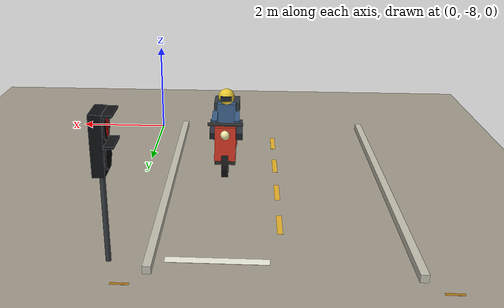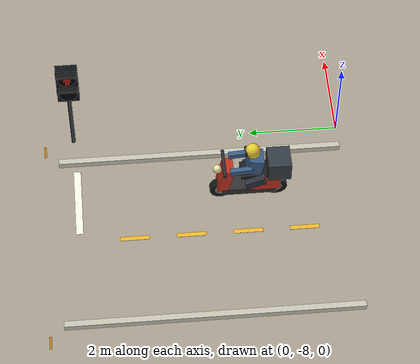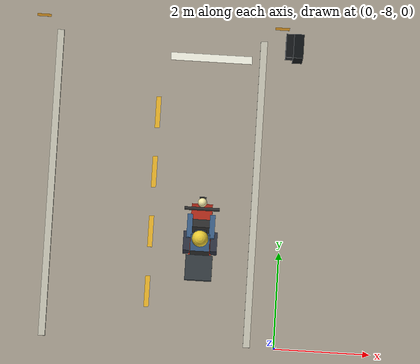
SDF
<sdf version="1.10">
 <world name="swan_market">
  <model name="ground">
   <static>true</static>
   <pose>15 0 -0.1 0 0 0</pose>
   <link name="body">
    <collision name="box_collision"><geometry><box><size>46 24 0.2</size></box></geometry></collision>
    <visual name="box_visual">
     <geometry><box><size>46 24 0.2</size></box></geometry>
     <material><ambient>0.64 0.61 0.55 1</ambient><diffuse>0.64 0.61 0.55 1</diffuse></material>
    </visual>
   </link>
  </model>
  <model name="entrance_curb_-4.83_-1">
   <static>true</static>
   <pose>-4.83 -4.8 0.07 0 0 0</pose>
   <link name="body">
    <collision name="box_collision"><geometry><box><size>0.14 6.4 0.14</size></box></geometry></collision>
    <visual name="box_visual">
     <geometry><box><size>0.14 6.4 0.14</size></box></geometry>
     <material><ambient>0.77 0.76 0.7 1</ambient><diffuse>0.77 0.76 0.7 1</diffuse></material>
    </visual>
   </link>
  </model>
  <model name="entrance_curb_-0.57_-1">
   <static>true</static>
   <pose>-0.57 -4.8 0.07 0 0 0</pose>
   <link name="body">
    <collision name="box_collision"><geometry><box><size>0.14 6.4 0.14</size></box></geometry></collision>
    <visual name="box_visual">
     <geometry><box><size>0.14 6.4 0.14</size></box></geometry>
     <material><ambient>0.77 0.76 0.7 1</ambient><diffuse>0.77 0.76 0.7 1</diffuse></material>
    </visual>
   </link>
  </model>
  <model name="road_stop_line_-1">
   <static>true</static>
   <pose>-1.65 -2 0.016 0 0 0</pose>
   <link name="body">
    <visual name="box_visual">
     <geometry><box><size>1.7 0.16 0.003</size></box></geometry>
     <material><ambient>0.95 0.95 0.89 1</ambient><diffuse>0.95 0.95 0.89 1</diffuse></material>
    </visual>
   </link>
  </model>
  <model name="road_center_line_-1_0">
   <static>true</static>
   <pose>-2.7 -3.2 0.016 0 0 0</pose>
   <link name="body">
    <visual name="box_visual">
     <geometry><box><size>0.1 0.65 0.003</size></box></geometry>
     <material><ambient>0.91 0.7 0.16 1</ambient><diffuse>0.91 0.7 0.16 1</diffuse></material>
    </visual>
   </link>
  </model>
  <model name="road_center_line_-1_1">
   <static>true</static>
   <pose>-2.7 -4.45 0.016 0 0 0</pose>
   <link name="body">
    <visual name="box_visual">
     <geometry><box><size>0.1 0.65 0.003</size></box></geometry>
     <material><ambient>0.91 0.7 0.16 1</ambient><diffuse>0.91 0.7 0.16 1</diffuse></material>
    </visual>
   </link>
  </model>
  <model name="road_center_line_-1_2">
   <static>true</static>
   <pose>-2.7 -5.7 0.016 0 0 0</pose>
   <link name="body">
    <visual name="box_visual">
     <geometry><box><size>0.1 0.65 0.003</size></box></geometry>
     <material><ambient>0.91 0.7 0.16 1</ambient><diffuse>0.91 0.7 0.16 1</diffuse></material>
    </visual>
   </link>
  </model>
  <model name="road_center_line_-1_3">
   <static>true</static>
   <pose>-2.7 -6.95 0.016 0 0 0</pose>
   <link name="body">
    <visual name="box_visual">
     <geometry><box><size>0.1 0.65 0.003</size></box></geometry>
     <material><ambient>0.91 0.7 0.16 1</ambient><diffuse>0.91 0.7 0.16 1</diffuse></material>
    </visual>
   </link>
  </model>
  <model name="tactile_mark_0_0">
   <static>true</static>
   <pose>-5.2 -1.3 0.022 0 0 0</pose>
   <link name="body">
    <visual name="box_visual">
     <geometry><box><size>0.3 0.055 0.002</size></box></geometry>
     <material><ambient>0.69 0.47 0.1 1</ambient><diffuse>0.69 0.47 0.1 1</diffuse></material>
    </visual>
   </link>
  </model>
  <model name="tactile_mark_1_0">
   <static>true</static>
   <pose>-0.2 -1.3 0.022 0 0 0</pose>
   <link name="body">
    <visual name="box_visual">
     <geometry><box><size>0.3 0.055 0.002</size></box></geometry>
     <material><ambient>0.69 0.47 0.1 1</ambient><diffuse>0.69 0.47 0.1 1</diffuse></material>
    </visual>
   </link>
  </model>
  <model name="ped_signal_east_housing">
   <static>true</static>
   <pose>0.1 -1.95 0 0 0 -1.5708</pose>
   <link name="body">
    <collision name="pole_collision">
     <pose>0 0 1.025 0 0 0</pose>
     <geometry><cylinder><radius>0.045</radius><length>2.05</length></cylinder></geometry>
    </collision>
    <visual name="pole_visual">
     <pose>0 0 1.025 0 0 0</pose>
     <geometry><cylinder><radius>0.045</radius><length>2.05</length></cylinder></geometry>
     <material><ambient>0.23 0.25 0.27 1</ambient><diffuse>0.23 0.25 0.27 1</diffuse></material>
    </visual>
    <collision name="housing_collision">
     <pose>0 0 2.08 0 0 0</pose>
     <geometry><box><size>0.48 0.2 0.99</size></box></geometry>
    </collision>
    <visual name="housing_visual">
     <pose>0 0 2.08 0 0 0</pose>
     <geometry><box><size>0.48 0.2 0.99</size></box></geometry>
     <material><ambient>0.055 0.065 0.075 1</ambient><diffuse>0.055 0.065 0.075 1</diffuse></material>
    </visual>
    <visual name="red_lens_visual">
     <pose>0 -0.113 2.32 1.5708 0 0</pose>
     <geometry><cylinder><radius>0.205</radius><length>0.022</length></cylinder></geometry>
     <material><ambient>0.013 0.018 0.022 1</ambient><diffuse>0.013 0.018 0.022 1</diffuse></material>
    </visual>
    <visual name="red_hood_visual">
     <pose>0 -0.13 2.545 0 0 0</pose>
     <geometry><box><size>0.47 0.25 0.04</size></box></geometry>
     <material><ambient>0.07 0.08 0.09 1</ambient><diffuse>0.07 0.08 0.09 1</diffuse></material>
    </visual>
    <visual name="green_lens_visual">
     <pose>0 -0.113 1.84 1.5708 0 0</pose>
     <geometry><cylinder><radius>0.205</radius><length>0.022</length></cylinder></geometry>
     <material><ambient>0.013 0.018 0.022 1</ambient><diffuse>0.013 0.018 0.022 1</diffuse></material>
    </visual>
    <visual name="green_hood_visual">
     <pose>0 -0.13 2.065 0 0 0</pose>
     <geometry><box><size>0.47 0.25 0.04</size></box></geometry>
     <material><ambient>0.07 0.08 0.09 1</ambient><diffuse>0.07 0.08 0.09 1</diffuse></material>
    </visual>
   </link>
  </model>
  <model name="ped_signal_east_red">
   <static>true</static>
   <pose>0.1 -1.95 0 0 0 -1.5708</pose>
   <link name="body">
    <visual name="head_visual">
     <pose>-0.012 -0.132 2.457 1.5708 0 0</pose>
     <geometry><cylinder><radius>0.035</radius><length>0.01</length></cylinder></geometry>
     <material>
      <ambient>1 0.025 0.015 1</ambient>
      <diffuse>1 0.025 0.015 1</diffuse>
      <emissive>1 0.025 0.015 1</emissive>
     </material>
     <cast_shadows>false</cast_shadows>
    </visual>
    <visual name="stroke_0_visual">
     <pose>0 -0.132 2.36 0 3.1416 0</pose>
     <geometry><box><size>0.064 0.01 0.122</size></box></geometry>
     <material>
      <ambient>1 0.025 0.015 1</ambient>
      <diffuse>1 0.025 0.015 1</diffuse>
      <emissive>1 0.025 0.015 1</emissive>
     </material>
     <cast_shadows>false</cast_shadows>
    </visual>
    <visual name="stroke_1_visual">
     <pose>-0.056 -0.132 2.338 0 -2.9551 0</pose>
     <geometry><box><size>0.026 0.01 0.11987</size></box></geometry>
     <material>
      <ambient>1 0.025 0.015 1</ambient>
      <diffuse>1 0.025 0.015 1</diffuse>
      <emissive>1 0.025 0.015 1</emissive>
     </material>
     <cast_shadows>false</cast_shadows>
    </visual>
    <visual name="stroke_2_visual">
     <pose>0.056 -0.132 2.338 0 2.9551 0</pose>
     <geometry><box><size>0.026 0.01 0.11987</size></box></geometry>
     <material>
      <ambient>1 0.025 0.015 1</ambient>
      <diffuse>1 0.025 0.015 1</diffuse>
      <emissive>1 0.025 0.015 1</emissive>
     </material>
     <cast_shadows>false</cast_shadows>
    </visual>
    <visual name="stroke_3_visual">
     <pose>-0.0255 -0.132 2.2425 0 -3.075 0</pose>
     <geometry><box><size>0.032 0.01 0.1473</size></box></geometry>
     <material>
      <ambient>1 0.025 0.015 1</ambient>
      <diffuse>1 0.025 0.015 1</diffuse>
      <emissive>1 0.025 0.015 1</emissive>
     </material>
     <cast_shadows>false</cast_shadows>
    </visual>
    <visual name="stroke_4_visual">
     <pose>0.0255 -0.132 2.2425 0 3.075 0</pose>
     <geometry><box><size>0.032 0.01 0.1473</size></box></geometry>
     <material>
      <ambient>1 0.025 0.015 1</ambient>
      <diffuse>1 0.025 0.015 1</diffuse>
      <emissive>1 0.025 0.015 1</emissive>
     </material>
     <cast_shadows>false</cast_shadows>
    </visual>
   </link>
  </model>
  <model name="traffic_motorcycle_1">
   <static>true</static>
   <pose>-1.65 -5.8 0 0 0 1.5708</pose>
   <link name="body">
    <collision name="tire_0_collision">
     <pose>-0.61 0 0.25 1.5708 0 0</pose>
     <geometry><cylinder><radius>0.25</radius><length>0.14</length></cylinder></geometry>
    </collision>
    <visual name="tire_0_visual">
     <pose>-0.61 0 0.25 1.5708 0 0</pose>
     <geometry><cylinder><radius>0.25</radius><length>0.14</length></cylinder></geometry>
     <material><ambient>0.075 0.075 0.07 1</ambient><diffuse>0.075 0.075 0.07 1</diffuse></material>
    </visual>
    <visual name="hub_0_visual">
     <pose>-0.61 0 0.25 1.5708 0 0</pose>
     <geometry><cylinder><radius>0.13</radius><length>0.145</length></cylinder></geometry>
     <material><ambient>0.57 0.59 0.6 1</ambient><diffuse>0.57 0.59 0.6 1</diffuse></material>
    </visual>
    <collision name="tire_1_collision">
     <pose>0.62 0 0.25 1.5708 0 0</pose>
     <geometry><cylinder><radius>0.25</radius><length>0.14</length></cylinder></geometry>
    </collision>
    <visual name="tire_1_visual">
     <pose>0.62 0 0.25 1.5708 0 0</pose>
     <geometry><cylinder><radius>0.25</radius><length>0.14</length></cylinder></geometry>
     <material><ambient>0.075 0.075 0.07 1</ambient><diffuse>0.075 0.075 0.07 1</diffuse></material>
    </visual>
    <visual name="hub_1_visual">
     <pose>0.62 0 0.25 1.5708 0 0</pose>
     <geometry><cylinder><radius>0.13</radius><length>0.145</length></cylinder></geometry>
     <material><ambient>0.57 0.59 0.6 1</ambient><diffuse>0.57 0.59 0.6 1</diffuse></material>
    </visual>
    <collision name="deck_collision">
     <pose>0 0 0.33 0 0 0</pose>
     <geometry><box><size>1.2 0.43 0.17</size></box></geometry>
    </collision>
    <visual name="deck_visual">
     <pose>0 0 0.33 0 0 0</pose>
     <geometry><box><size>1.2 0.43 0.17</size></box></geometry>
     <material><ambient>0.18 0.18 0.18 1</ambient><diffuse>0.18 0.18 0.18 1</diffuse></material>
    </visual>
    <collision name="rear_body_collision">
     <pose>-0.36 0 0.59 0 0 0</pose>
     <geometry><box><size>0.65 0.46 0.4</size></box></geometry>
    </collision>
    <visual name="rear_body_visual">
     <pose>-0.36 0 0.59 0 0 0</pose>
     <geometry><box><size>0.65 0.46 0.4</size></box></geometry>
     <material><ambient>0.76 0.19 0.12 1</ambient><diffuse>0.76 0.19 0.12 1</diffuse></material>
    </visual>
    <collision name="seat_collision">
     <pose>-0.2 0 0.83 0 0 0</pose>
     <geometry><box><size>0.8 0.4 0.12</size></box></geometry>
    </collision>
    <visual name="seat_visual">
     <pose>-0.2 0 0.83 0 0 0</pose>
     <geometry><box><size>0.8 0.4 0.12</size></box></geometry>
     <material><ambient>0.1 0.1 0.1 1</ambient><diffuse>0.1 0.1 0.1 1</diffuse></material>
    </visual>
    <collision name="front_fairing_collision">
     <pose>0.53 0 0.69 0 -0.2 0</pose>
     <geometry><box><size>0.23 0.43 0.69</size></box></geometry>
    </collision>
    <visual name="front_fairing_visual">
     <pose>0.53 0 0.69 0 -0.2 0</pose>
     <geometry><box><size>0.23 0.43 0.69</size></box></geometry>
     <material><ambient>0.76 0.19 0.12 1</ambient><diffuse>0.76 0.19 0.12 1</diffuse></material>
    </visual>
    <collision name="handlebar_collision">
     <pose>0.56 0 1.12 1.5708 0 0</pose>
     <geometry><cylinder><radius>0.035</radius><length>0.72</length></cylinder></geometry>
    </collision>
    <visual name="handlebar_visual">
     <pose>0.56 0 1.12 1.5708 0 0</pose>
     <geometry><cylinder><radius>0.035</radius><length>0.72</length></cylinder></geometry>
     <material><ambient>0.18 0.18 0.18 1</ambient><diffuse>0.18 0.18 0.18 1</diffuse></material>
    </visual>
    <visual name="headlight_visual">
     <pose>0.7 0 0.94 0 0 0</pose>
     <geometry><sphere><radius>0.095</radius></sphere></geometry>
     <material><ambient>0.96 0.92 0.66 1</ambient><diffuse>0.96 0.92 0.66 1</diffuse></material>
    </visual>
    <collision name="delivery_box_collision">
     <pose>-0.65 0 1.01 0 0 0</pose>
     <geometry><box><size>0.51 0.55 0.48</size></box></geometry>
    </collision>
    <visual name="delivery_box_visual">
     <pose>-0.65 0 1.01 0 0 0</pose>
     <geometry><box><size>0.51 0.55 0.48</size></box></geometry>
     <material><ambient>0.2 0.23 0.25 1</ambient><diffuse>0.2 0.23 0.25 1</diffuse></material>
    </visual>
    <collision name="rider_torso_collision">
     <pose>-0.12 0 1.12 0 -0.15 0</pose>
     <geometry><box><size>0.33 0.39 0.43</size></box></geometry>
    </collision>
    <visual name="rider_torso_visual">
     <pose>-0.12 0 1.12 0 -0.15 0</pose>
     <geometry><box><size>0.33 0.39 0.43</size></box></geometry>
     <material><ambient>0.22 0.36 0.52 1</ambient><diffuse>0.22 0.36 0.52 1</diffuse></material>
    </visual>
    <collision name="helmet_collision">
     <pose>-0.07 0 1.51 0 0 0</pose>
     <geometry><sphere><radius>0.17</radius></sphere></geometry>
    </collision>
    <visual name="helmet_visual">
     <pose>-0.07 0 1.51 0 0 0</pose>
     <geometry><sphere><radius>0.17</radius></sphere></geometry>
     <material><ambient>0.91 0.79 0.2 1</ambient><diffuse>0.91 0.79 0.2 1</diffuse></material>
    </visual>
    <visual name="visor_visual">
     <pose>0.087 0 1.51 0 0 0</pose>
     <geometry><box><size>0.045 0.23 0.1</size></box></geometry>
     <material><ambient>0.13 0.17 0.2 1</ambient><diffuse>0.13 0.17 0.2 1</diffuse></material>
    </visual>
    <collision name="rider_leg_-1_collision">
     <pose>-0.12 -0.28 0.75 0 0.4 0</pose>
     <geometry><box><size>0.44 0.14 0.18</size></box></geometry>
    </collision>
    <visual name="rider_leg_-1_visual">
     <pose>-0.12 -0.28 0.75 0 0.4 0</pose>
     <geometry><box><size>0.44 0.14 0.18</size></box></geometry>
     <material><ambient>0.16 0.18 0.23 1</ambient><diffuse>0.16 0.18 0.23 1</diffuse></material>
    </visual>
    <collision name="rider_arm_-1_collision">
     <pose>0.2 -0.23 1.12 0 0.1 0</pose>
     <geometry><box><size>0.48 0.11 0.12</size></box></geometry>
    </collision>
    <visual name="rider_arm_-1_visual">
     <pose>0.2 -0.23 1.12 0 0.1 0</pose>
     <geometry><box><size>0.48 0.11 0.12</size></box></geometry>
     <material><ambient>0.22 0.36 0.52 1</ambient><diffuse>0.22 0.36 0.52 1</diffuse></material>
    </visual>
    <collision name="rider_leg_1_collision">
     <pose>-0.12 0.28 0.75 0 0.4 0</pose>
     <geometry><box><size>0.44 0.14 0.18</size></box></geometry>
    </collision>
    <visual name="rider_leg_1_visual">
     <pose>-0.12 0.28 0.75 0 0.4 0</pose>
     <geometry><box><size>0.44 0.14 0.18</size></box></geometry>
     <material><ambient>0.16 0.18 0.23 1</ambient><diffuse>0.16 0.18 0.23 1</diffuse></material>
    </visual>
    <collision name="rider_arm_1_collision">
     <pose>0.2 0.23 1.12 0 0.1 0</pose>
     <geometry><box><size>0.48 0.11 0.12</size></box></geometry>
    </collision>
    <visual name="rider_arm_1_visual">
     <pose>0.2 0.23 1.12 0 0.1 0</pose>
     <geometry><box><size>0.48 0.11 0.12</size></box></geometry>
     <material><ambient>0.22 0.36 0.52 1</ambient><diffuse>0.22 0.36 0.52 1</diffuse></material>
    </visual>
   </link>
  </model>
 </world>
</sdf>
